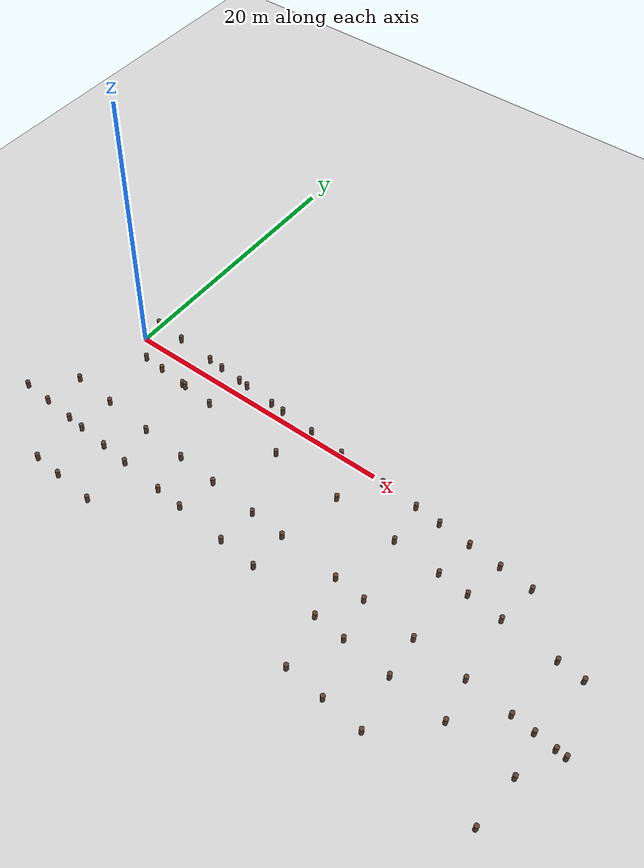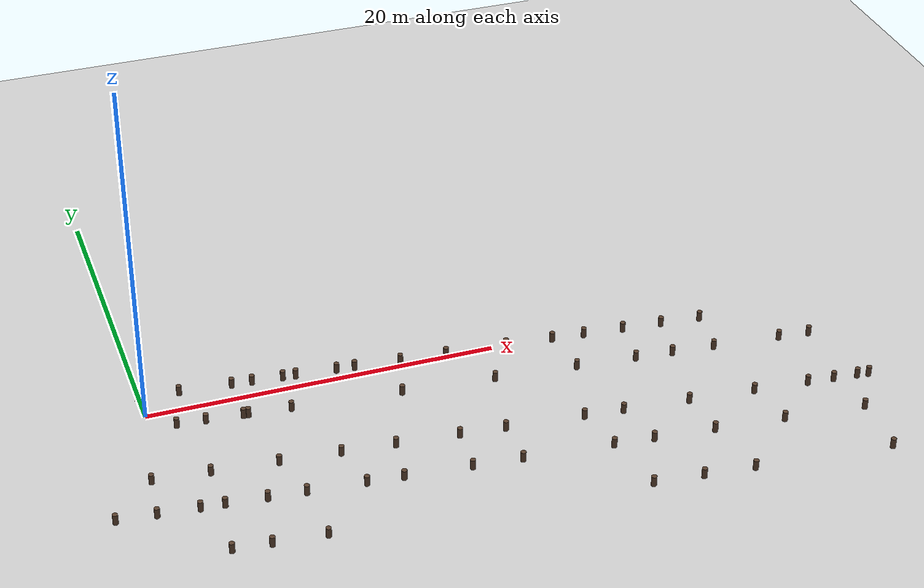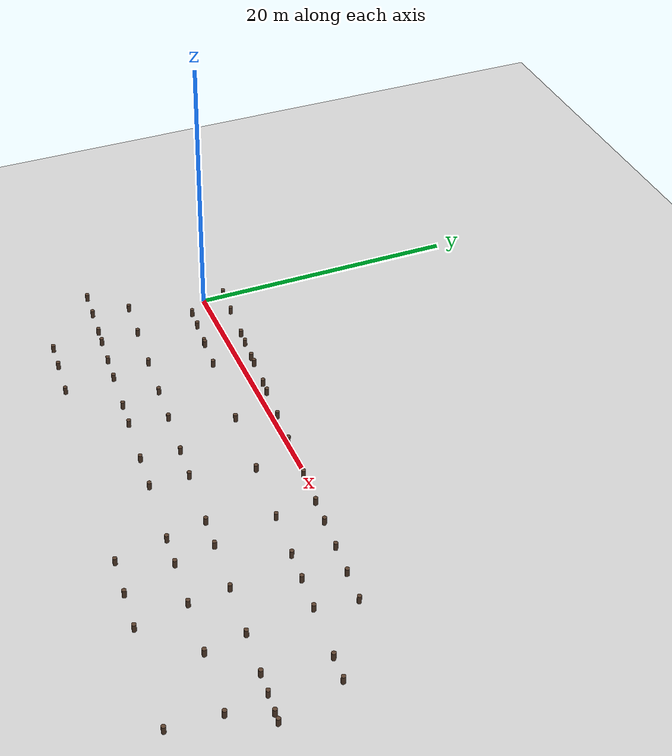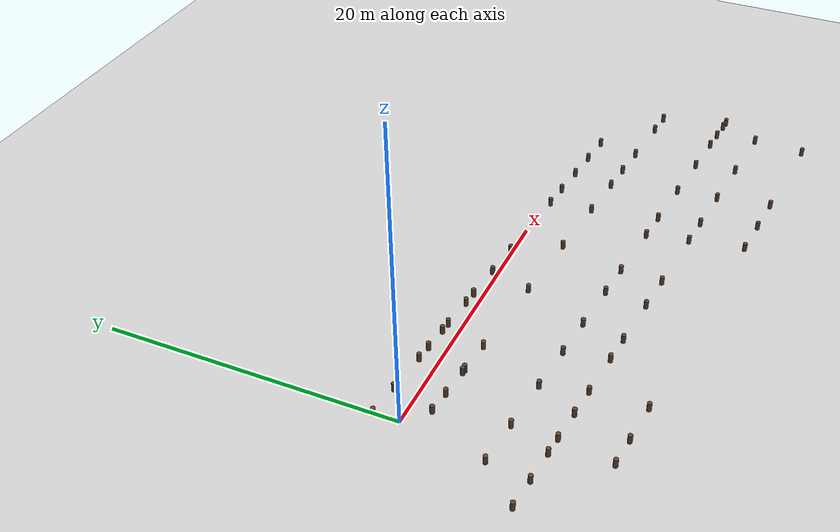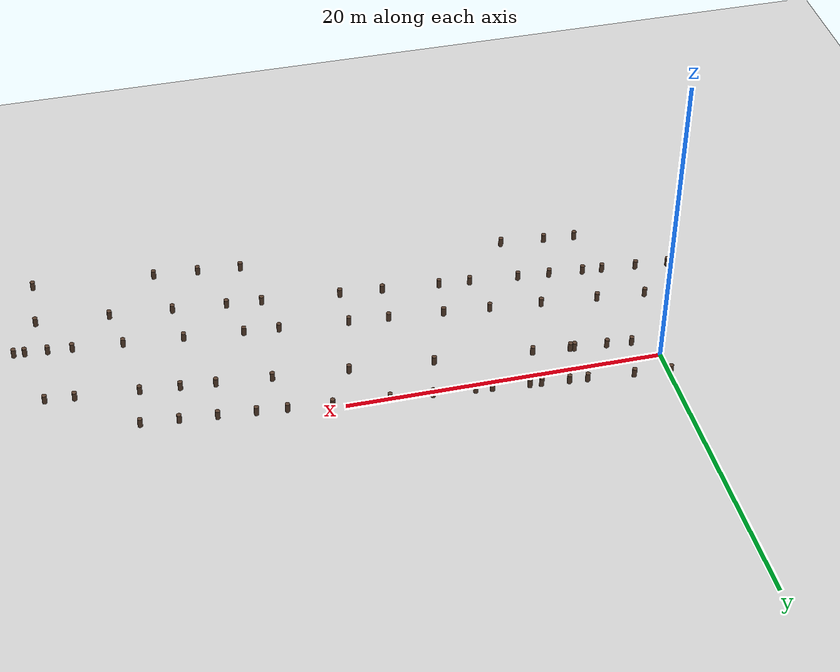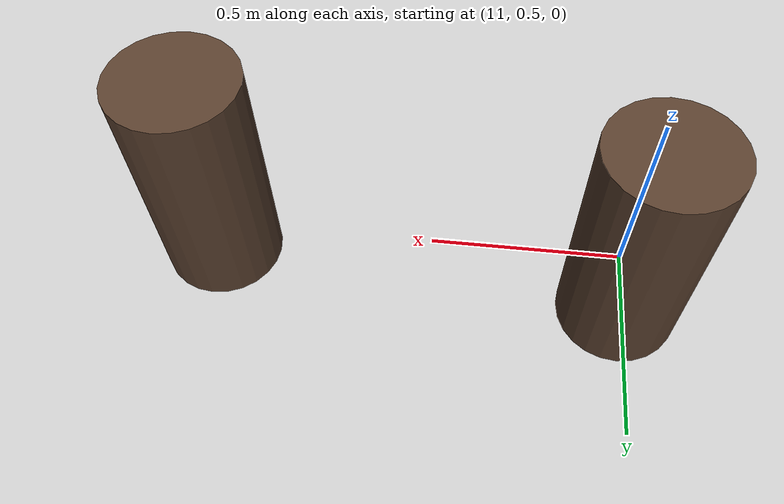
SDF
<?xml version="1.0"?>
<sdf version="1.6">
  <world name="orchard_world">
    <include>
      <uri>model://sun</uri>
    </include>

    <include>
      <uri>model://ground_plane</uri>
    </include>

    <!-- Trees: 66 includes of model://tree_trunk -->
    <include>
      <uri>model://tree_trunk</uri>
      <name>tree_0000</name>
      <pose>37.227093 -15.477016 0 0 0 0</pose>
    </include>
    <include>
      <uri>model://tree_trunk</uri>
      <name>tree_0001</name>
      <pose>29.478107 -14.801285 0 0 0 0</pose>
    </include>
    <include>
      <uri>model://tree_trunk</uri>
      <name>tree_0002</name>
      <pose>26.632938 -14.553179 0 0 0 0</pose>
    </include>
    <include>
      <uri>model://tree_trunk</uri>
      <name>tree_0003</name>
      <pose>23.859056 -14.311289 0 0 0 0</pose>
    </include>
    <include>
      <uri>model://tree_trunk</uri>
      <name>tree_0004</name>
      <pose>6.655115 -12.811059 0 0 0 0</pose>
    </include>
    <include>
      <uri>model://tree_trunk</uri>
      <name>tree_0005</name>
      <pose>3.784095 -12.560699 0 0 0 0</pose>
    </include>
    <include>
      <uri>model://tree_trunk</uri>
      <name>tree_0006</name>
      <pose>1.742924 -12.382703 0 0 0 0</pose>
    </include>
    <include>
      <uri>model://tree_trunk</uri>
      <name>tree_0007</name>
      <pose>37.453480 -11.883082 0 0 0 0</pose>
    </include>
    <include>
      <uri>model://tree_trunk</uri>
      <name>tree_0008</name>
      <pose>32.815319 -11.478622 0 0 0 0</pose>
    </include>
    <include>
      <uri>model://tree_trunk</uri>
      <name>tree_0009</name>
      <pose>28.834242 -11.131462 0 0 0 0</pose>
    </include>
    <include>
      <uri>model://tree_trunk</uri>
      <name>tree_0010</name>
      <pose>25.402294 -10.832187 0 0 0 0</pose>
    </include>
    <include>
      <uri>model://tree_trunk</uri>
      <name>tree_0011</name>
      <pose>23.156652 -10.636361 0 0 0 0</pose>
    </include>
    <include>
      <uri>model://tree_trunk</uri>
      <name>tree_0012</name>
      <pose>18.133972 -10.198370 0 0 0 0</pose>
    </include>
    <include>
      <uri>model://tree_trunk</uri>
      <name>tree_0013</name>
      <pose>15.391777 -9.959244 0 0 0 0</pose>
    </include>
    <include>
      <uri>model://tree_trunk</uri>
      <name>tree_0014</name>
      <pose>11.697782 -9.637117 0 0 0 0</pose>
    </include>
    <include>
      <uri>model://tree_trunk</uri>
      <name>tree_0015</name>
      <pose>9.708392 -9.463637 0 0 0 0</pose>
    </include>
    <include>
      <uri>model://tree_trunk</uri>
      <name>tree_0016</name>
      <pose>39.099598 -9.215992 0 0 0 0</pose>
    </include>
    <include>
      <uri>model://tree_trunk</uri>
      <name>tree_0017</name>
      <pose>6.539353 -9.187288 0 0 0 0</pose>
    </include>
    <include>
      <uri>model://tree_trunk</uri>
      <name>tree_0018</name>
      <pose>38.423000 -9.156990 0 0 0 0</pose>
    </include>
    <include>
      <uri>model://tree_trunk</uri>
      <name>tree_0019</name>
      <pose>37.019394 -9.034593 0 0 0 0</pose>
    </include>
    <include>
      <uri>model://tree_trunk</uri>
      <name>tree_0020</name>
      <pose>4.490788 -9.008648 0 0 0 0</pose>
    </include>
    <include>
      <uri>model://tree_trunk</uri>
      <name>tree_0021</name>
      <pose>35.494896 -8.901652 0 0 0 0</pose>
    </include>
    <include>
      <uri>model://tree_trunk</uri>
      <name>tree_0022</name>
      <pose>2.278308 -8.815714 0 0 0 0</pose>
    </include>
    <include>
      <uri>model://tree_trunk</uri>
      <name>tree_0023</name>
      <pose>1.004432 -8.704629 0 0 0 0</pose>
    </include>
    <include>
      <uri>model://tree_trunk</uri>
      <name>tree_0024</name>
      <pose>32.349518 -8.627367 0 0 0 0</pose>
    </include>
    <include>
      <uri>model://tree_trunk</uri>
      <name>tree_0025</name>
      <pose>-1.223099 -8.510383 0 0 0 0</pose>
    </include>
    <include>
      <uri>model://tree_trunk</uri>
      <name>tree_0026</name>
      <pose>-3.345597 -8.325294 0 0 0 0</pose>
    </include>
    <include>
      <uri>model://tree_trunk</uri>
      <name>tree_0027</name>
      <pose>28.577021 -8.298395 0 0 0 0</pose>
    </include>
    <include>
      <uri>model://tree_trunk</uri>
      <name>tree_0028</name>
      <pose>24.810318 -7.969929 0 0 0 0</pose>
    </include>
    <include>
      <uri>model://tree_trunk</uri>
      <name>tree_0029</name>
      <pose>22.592068 -7.776491 0 0 0 0</pose>
    </include>
    <include>
      <uri>model://tree_trunk</uri>
      <name>tree_0030</name>
      <pose>18.178818 -7.391644 0 0 0 0</pose>
    </include>
    <include>
      <uri>model://tree_trunk</uri>
      <name>tree_0031</name>
      <pose>15.638533 -7.170125 0 0 0 0</pose>
    </include>
    <include>
      <uri>model://tree_trunk</uri>
      <name>tree_0032</name>
      <pose>12.122587 -6.863525 0 0 0 0</pose>
    </include>
    <include>
      <uri>model://tree_trunk</uri>
      <name>tree_0033</name>
      <pose>9.158360 -6.605036 0 0 0 0</pose>
    </include>
    <include>
      <uri>model://tree_trunk</uri>
      <name>tree_0034</name>
      <pose>5.827429 -6.314570 0 0 0 0</pose>
    </include>
    <include>
      <uri>model://tree_trunk</uri>
      <name>tree_0035</name>
      <pose>2.201422 -5.998373 0 0 0 0</pose>
    </include>
    <include>
      <uri>model://tree_trunk</uri>
      <name>tree_0036</name>
      <pose>-0.910599 -5.726996 0 0 0 0</pose>
    </include>
    <include>
      <uri>model://tree_trunk</uri>
      <name>tree_0037</name>
      <pose>37.707737 -4.577523 0 0 0 0</pose>
    </include>
    <include>
      <uri>model://tree_trunk</uri>
      <name>tree_0038</name>
      <pose>35.902714 -4.420120 0 0 0 0</pose>
    </include>
    <include>
      <uri>model://tree_trunk</uri>
      <name>tree_0039</name>
      <pose>31.983191 -4.078328 0 0 0 0</pose>
    </include>
    <include>
      <uri>model://tree_trunk</uri>
      <name>tree_0040</name>
      <pose>29.517460 -3.863309 0 0 0 0</pose>
    </include>
    <include>
      <uri>model://tree_trunk</uri>
      <name>tree_0041</name>
      <pose>27.353529 -3.674609 0 0 0 0</pose>
    </include>
    <include>
      <uri>model://tree_trunk</uri>
      <name>tree_0042</name>
      <pose>23.891771 -3.372734 0 0 0 0</pose>
    </include>
    <include>
      <uri>model://tree_trunk</uri>
      <name>tree_0043</name>
      <pose>19.166977 -2.960720 0 0 0 0</pose>
    </include>
    <include>
      <uri>model://tree_trunk</uri>
      <name>tree_0044</name>
      <pose>13.880925 -2.499762 0 0 0 0</pose>
    </include>
    <include>
      <uri>model://tree_trunk</uri>
      <name>tree_0045</name>
      <pose>7.693704 -1.960220 0 0 0 0</pose>
    </include>
    <include>
      <uri>model://tree_trunk</uri>
      <name>tree_0046</name>
      <pose>5.318776 -1.753120 0 0 0 0</pose>
    </include>
    <include>
      <uri>model://tree_trunk</uri>
      <name>tree_0047</name>
      <pose>5.057426 -1.730330 0 0 0 0</pose>
    </include>
    <include>
      <uri>model://tree_trunk</uri>
      <name>tree_0048</name>
      <pose>2.994790 -1.550462 0 0 0 0</pose>
    </include>
    <include>
      <uri>model://tree_trunk</uri>
      <name>tree_0049</name>
      <pose>1.416185 -1.412804 0 0 0 0</pose>
    </include>
    <include>
      <uri>model://tree_trunk</uri>
      <name>tree_0050</name>
      <pose>32.384647 -1.202319 0 0 0 0</pose>
    </include>
    <include>
      <uri>model://tree_trunk</uri>
      <name>tree_0051</name>
      <pose>30.048859 -0.998632 0 0 0 0</pose>
    </include>
    <include>
      <uri>model://tree_trunk</uri>
      <name>tree_0052</name>
      <pose>27.745329 -0.797758 0 0 0 0</pose>
    </include>
    <include>
      <uri>model://tree_trunk</uri>
      <name>tree_0053</name>
      <pose>25.415541 -0.594594 0 0 0 0</pose>
    </include>
    <include>
      <uri>model://tree_trunk</uri>
      <name>tree_0054</name>
      <pose>23.543541 -0.431351 0 0 0 0</pose>
    </include>
    <include>
      <uri>model://tree_trunk</uri>
      <name>tree_0055</name>
      <pose>20.816250 -0.193524 0 0 0 0</pose>
    </include>
    <include>
      <uri>model://tree_trunk</uri>
      <name>tree_0056</name>
      <pose>17.315851 0.111720 0 0 0 0</pose>
    </include>
    <include>
      <uri>model://tree_trunk</uri>
      <name>tree_0057</name>
      <pose>14.670187 0.342429 0 0 0 0</pose>
    </include>
    <include>
      <uri>model://tree_trunk</uri>
      <name>tree_0058</name>
      <pose>12.049959 0.570920 0 0 0 0</pose>
    </include>
    <include>
      <uri>model://tree_trunk</uri>
      <name>tree_0059</name>
      <pose>11.018620 0.660855 0 0 0 0</pose>
    </include>
    <include>
      <uri>model://tree_trunk</uri>
      <name>tree_0060</name>
      <pose>8.704967 0.862612 0 0 0 0</pose>
    </include>
    <include>
      <uri>model://tree_trunk</uri>
      <name>tree_0061</name>
      <pose>7.981194 0.925727 0 0 0 0</pose>
    </include>
    <include>
      <uri>model://tree_trunk</uri>
      <name>tree_0062</name>
      <pose>6.247021 1.076951 0 0 0 0</pose>
    </include>
    <include>
      <uri>model://tree_trunk</uri>
      <name>tree_0063</name>
      <pose>5.111092 1.176007 0 0 0 0</pose>
    </include>
    <include>
      <uri>model://tree_trunk</uri>
      <name>tree_0064</name>
      <pose>2.189833 1.430749 0 0 0 0</pose>
    </include>
    <include>
      <uri>model://tree_trunk</uri>
      <name>tree_0065</name>
      <pose>-0.106357 1.630983 0 0 0 0</pose>
    </include>
  </world>
</sdf>

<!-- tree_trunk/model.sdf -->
<sdf version="1.6">
  <model name="tree_trunk">
    <static>true</static>
    <link name="link">
      <collision name="trunk_collision">
        <pose>0 0 0.30 0 0 0</pose>
        <geometry>
          <cylinder>
            <radius>0.15</radius>
            <length>0.60</length>
          </cylinder>
        </geometry>
      </collision>
      <visual name="trunk_visual">
        <pose>0 0 0.30 0 0 0</pose>
        <geometry>
          <cylinder>
            <radius>0.15</radius>
            <length>0.60</length>
          </cylinder>
        </geometry>
        <material>
          <ambient>0.25 0.18 0.12 1</ambient>
          <diffuse>0.35 0.25 0.18 1</diffuse>
        </material>
      </visual>
    </link>
  </model>
</sdf>
